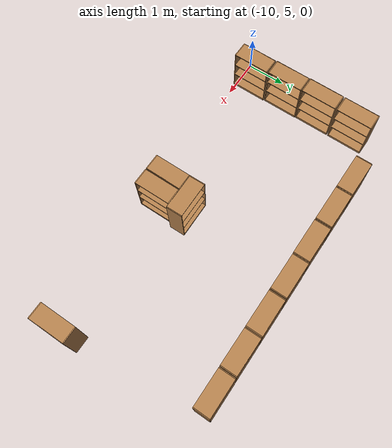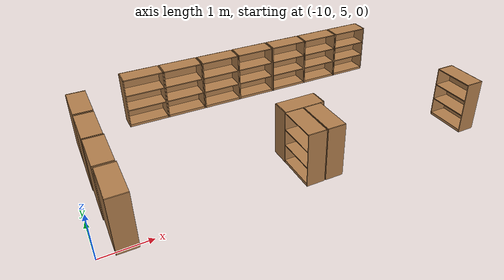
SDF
<sdf version="1.7">
 <world name="default">
  <model name="bookshelf_clone">
   <static>1</static>
   <link name="link">
    <inertial><mass>1</mass></inertial>
    <collision name="back">
     <pose>0 0.005 0.6 0 -0 0</pose>
     <geometry><box><size>0.9 0.01 1.2</size></box></geometry>
    </collision>
    <visual name="visual1">
     <pose>0 0.005 0.6 0 -0 0</pose>
     <geometry><box><size>0.9 0.01 1.2</size></box></geometry>
     <material>
      <script><uri>file://media/materials/scripts/gazebo.material</uri><name>Gazebo/Wood</name></script>
     </material>
    </visual>
    <collision name="left_side">
     <pose>0.45 -0.195 0.6 0 -0 0</pose>
     <geometry><box><size>0.02 0.4 1.2</size></box></geometry>
    </collision>
    <visual name="visual2">
     <pose>0.45 -0.195 0.6 0 -0 0</pose>
     <geometry><box><size>0.02 0.4 1.2</size></box></geometry>
     <material>
      <script><uri>file://media/materials/scripts/gazebo.material</uri><name>Gazebo/Wood</name></script>
     </material>
    </visual>
    <collision name="right_side">
     <pose>-0.45 -0.195 0.6 0 -0 0</pose>
     <geometry><box><size>0.02 0.4 1.2</size></box></geometry>
    </collision>
    <visual name="visual3">
     <pose>-0.45 -0.195 0.6 0 -0 0</pose>
     <geometry><box><size>0.02 0.4 1.2</size></box></geometry>
     <material>
      <script><uri>file://media/materials/scripts/gazebo.material</uri><name>Gazebo/Wood</name></script>
     </material>
    </visual>
    <collision name="bottom">
     <pose>0 -0.195 0.03 0 -0 0</pose>
     <geometry><box><size>0.88 0.4 0.06</size></box></geometry>
    </collision>
    <visual name="visual4">
     <pose>0 -0.195 0.03 0 -0 0</pose>
     <geometry><box><size>0.88 0.4 0.06</size></box></geometry>
     <material>
      <script><uri>file://media/materials/scripts/gazebo.material</uri><name>Gazebo/Wood</name></script>
     </material>
    </visual>
    <collision name="top">
     <pose>0 -0.195 1.19 0 -0 0</pose>
     <geometry><box><size>0.88 0.4 0.02</size></box></geometry>
    </collision>
    <visual name="visual5">
     <pose>0 -0.195 1.19 0 -0 0</pose>
     <geometry><box><size>0.88 0.4 0.02</size></box></geometry>
     <material>
      <script><uri>file://media/materials/scripts/gazebo.material</uri><name>Gazebo/Wood</name></script>
     </material>
    </visual>
    <collision name="low_shelf">
     <pose>0 -0.195 0.43 0 -0 0</pose>
     <geometry><box><size>0.88 0.4 0.02</size></box></geometry>
    </collision>
    <visual name="visual6">
     <pose>0 -0.195 0.43 0 -0 0</pose>
     <geometry><box><size>0.88 0.4 0.02</size></box></geometry>
     <material>
      <script><uri>file://media/materials/scripts/gazebo.material</uri><name>Gazebo/Wood</name></script>
     </material>
    </visual>
    <collision name="high_shelf">
     <pose>0 -0.195 0.8 0 -0 0</pose>
     <geometry><box><size>0.88 0.4 0.02</size></box></geometry>
    </collision>
    <visual name="visual7">
     <pose>0 -0.195 0.8 0 -0 0</pose>
     <geometry><box><size>0.88 0.4 0.02</size></box></geometry>
     <material>
      <script><uri>file://media/materials/scripts/gazebo.material</uri><name>Gazebo/Wood</name></script>
     </material>
    </visual>
   </link>
   <pose>-6.18598 9.11437 0 0 -0 0</pose>
  </model>
  <model name="bookshelf_clone_0_clone_0_clone_clone_7">
   <static>1</static>
   <link name="link">
    <inertial><mass>1</mass></inertial>
    <collision name="back">
     <pose>0 0.005 0.6 0 -0 0</pose>
     <geometry><box><size>0.9 0.01 1.2</size></box></geometry>
    </collision>
    <visual name="visual1">
     <pose>0 0.005 0.6 0 -0 0</pose>
     <geometry><box><size>0.9 0.01 1.2</size></box></geometry>
     <material>
      <script><uri>file://media/materials/scripts/gazebo.material</uri><name>Gazebo/Wood</name></script>
     </material>
    </visual>
    <collision name="left_side">
     <pose>0.45 -0.195 0.6 0 -0 0</pose>
     <geometry><box><size>0.02 0.4 1.2</size></box></geometry>
    </collision>
    <visual name="visual2">
     <pose>0.45 -0.195 0.6 0 -0 0</pose>
     <geometry><box><size>0.02 0.4 1.2</size></box></geometry>
     <material>
      <script><uri>file://media/materials/scripts/gazebo.material</uri><name>Gazebo/Wood</name></script>
     </material>
    </visual>
    <collision name="right_side">
     <pose>-0.45 -0.195 0.6 0 -0 0</pose>
     <geometry><box><size>0.02 0.4 1.2</size></box></geometry>
    </collision>
    <visual name="visual3">
     <pose>-0.45 -0.195 0.6 0 -0 0</pose>
     <geometry><box><size>0.02 0.4 1.2</size></box></geometry>
     <material>
      <script><uri>file://media/materials/scripts/gazebo.material</uri><name>Gazebo/Wood</name></script>
     </material>
    </visual>
    <collision name="bottom">
     <pose>0 -0.195 0.03 0 -0 0</pose>
     <geometry><box><size>0.88 0.4 0.06</size></box></geometry>
    </collision>
    <visual name="visual4">
     <pose>0 -0.195 0.03 0 -0 0</pose>
     <geometry><box><size>0.88 0.4 0.06</size></box></geometry>
     <material>
      <script><uri>file://media/materials/scripts/gazebo.material</uri><name>Gazebo/Wood</name></script>
     </material>
    </visual>
    <collision name="top">
     <pose>0 -0.195 1.19 0 -0 0</pose>
     <geometry><box><size>0.88 0.4 0.02</size></box></geometry>
    </collision>
    <visual name="visual5">
     <pose>0 -0.195 1.19 0 -0 0</pose>
     <geometry><box><size>0.88 0.4 0.02</size></box></geometry>
     <material>
      <script><uri>file://media/materials/scripts/gazebo.material</uri><name>Gazebo/Wood</name></script>
     </material>
    </visual>
    <collision name="low_shelf">
     <pose>0 -0.195 0.43 0 -0 0</pose>
     <geometry><box><size>0.88 0.4 0.02</size></box></geometry>
    </collision>
    <visual name="visual6">
     <pose>0 -0.195 0.43 0 -0 0</pose>
     <geometry><box><size>0.88 0.4 0.02</size></box></geometry>
     <material>
      <script><uri>file://media/materials/scripts/gazebo.material</uri><name>Gazebo/Wood</name></script>
     </material>
    </visual>
    <collision name="high_shelf">
     <pose>0 -0.195 0.8 0 -0 0</pose>
     <geometry><box><size>0.88 0.4 0.02</size></box></geometry>
    </collision>
    <visual name="visual7">
     <pose>0 -0.195 0.8 0 -0 0</pose>
     <geometry><box><size>0.88 0.4 0.02</size></box></geometry>
     <material>
      <script><uri>file://media/materials/scripts/gazebo.material</uri><name>Gazebo/Wood</name></script>
     </material>
    </visual>
   </link>
   <pose>-9.67479 5.39487 0 0 -0 1.56663</pose>
  </model>
  <model name="bookshelf_clone_0_clone_0_clone_clone_8">
   <static>1</static>
   <link name="link">
    <inertial><mass>1</mass></inertial>
    <collision name="back">
     <pose>0 0.005 0.6 0 -0 0</pose>
     <geometry><box><size>0.9 0.01 1.2</size></box></geometry>
    </collision>
    <visual name="visual1">
     <pose>0 0.005 0.6 0 -0 0</pose>
     <geometry><box><size>0.9 0.01 1.2</size></box></geometry>
     <material>
      <script><uri>file://media/materials/scripts/gazebo.material</uri><name>Gazebo/Wood</name></script>
     </material>
    </visual>
    <collision name="left_side">
     <pose>0.45 -0.195 0.6 0 -0 0</pose>
     <geometry><box><size>0.02 0.4 1.2</size></box></geometry>
    </collision>
    <visual name="visual2">
     <pose>0.45 -0.195 0.6 0 -0 0</pose>
     <geometry><box><size>0.02 0.4 1.2</size></box></geometry>
     <material>
      <script><uri>file://media/materials/scripts/gazebo.material</uri><name>Gazebo/Wood</name></script>
     </material>
    </visual>
    <collision name="right_side">
     <pose>-0.45 -0.195 0.6 0 -0 0</pose>
     <geometry><box><size>0.02 0.4 1.2</size></box></geometry>
    </collision>
    <visual name="visual3">
     <pose>-0.45 -0.195 0.6 0 -0 0</pose>
     <geometry><box><size>0.02 0.4 1.2</size></box></geometry>
     <material>
      <script><uri>file://media/materials/scripts/gazebo.material</uri><name>Gazebo/Wood</name></script>
     </material>
    </visual>
    <collision name="bottom">
     <pose>0 -0.195 0.03 0 -0 0</pose>
     <geometry><box><size>0.88 0.4 0.06</size></box></geometry>
    </collision>
    <visual name="visual4">
     <pose>0 -0.195 0.03 0 -0 0</pose>
     <geometry><box><size>0.88 0.4 0.06</size></box></geometry>
     <material>
      <script><uri>file://media/materials/scripts/gazebo.material</uri><name>Gazebo/Wood</name></script>
     </material>
    </visual>
    <collision name="top">
     <pose>0 -0.195 1.19 0 -0 0</pose>
     <geometry><box><size>0.88 0.4 0.02</size></box></geometry>
    </collision>
    <visual name="visual5">
     <pose>0 -0.195 1.19 0 -0 0</pose>
     <geometry><box><size>0.88 0.4 0.02</size></box></geometry>
     <material>
      <script><uri>file://media/materials/scripts/gazebo.material</uri><name>Gazebo/Wood</name></script>
     </material>
    </visual>
    <collision name="low_shelf">
     <pose>0 -0.195 0.43 0 -0 0</pose>
     <geometry><box><size>0.88 0.4 0.02</size></box></geometry>
    </collision>
    <visual name="visual6">
     <pose>0 -0.195 0.43 0 -0 0</pose>
     <geometry><box><size>0.88 0.4 0.02</size></box></geometry>
     <material>
      <script><uri>file://media/materials/scripts/gazebo.material</uri><name>Gazebo/Wood</name></script>
     </material>
    </visual>
    <collision name="high_shelf">
     <pose>0 -0.195 0.8 0 -0 0</pose>
     <geometry><box><size>0.88 0.4 0.02</size></box></geometry>
    </collision>
    <visual name="visual7">
     <pose>0 -0.195 0.8 0 -0 0</pose>
     <geometry><box><size>0.88 0.4 0.02</size></box></geometry>
     <material>
      <script><uri>file://media/materials/scripts/gazebo.material</uri><name>Gazebo/Wood</name></script>
     </material>
    </visual>
   </link>
   <pose>-9.68798 6.33774 0 0 -0 1.56663</pose>
  </model>
  <model name="bookshelf_clone_0_clone_0_clone_clone_9">
   <static>1</static>
   <link name="link">
    <inertial><mass>1</mass></inertial>
    <collision name="back">
     <pose>0 0.005 0.6 0 -0 0</pose>
     <geometry><box><size>0.9 0.01 1.2</size></box></geometry>
    </collision>
    <visual name="visual1">
     <pose>0 0.005 0.6 0 -0 0</pose>
     <geometry><box><size>0.9 0.01 1.2</size></box></geometry>
     <material>
      <script><uri>file://media/materials/scripts/gazebo.material</uri><name>Gazebo/Wood</name></script>
     </material>
    </visual>
    <collision name="left_side">
     <pose>0.45 -0.195 0.6 0 -0 0</pose>
     <geometry><box><size>0.02 0.4 1.2</size></box></geometry>
    </collision>
    <visual name="visual2">
     <pose>0.45 -0.195 0.6 0 -0 0</pose>
     <geometry><box><size>0.02 0.4 1.2</size></box></geometry>
     <material>
      <script><uri>file://media/materials/scripts/gazebo.material</uri><name>Gazebo/Wood</name></script>
     </material>
    </visual>
    <collision name="right_side">
     <pose>-0.45 -0.195 0.6 0 -0 0</pose>
     <geometry><box><size>0.02 0.4 1.2</size></box></geometry>
    </collision>
    <visual name="visual3">
     <pose>-0.45 -0.195 0.6 0 -0 0</pose>
     <geometry><box><size>0.02 0.4 1.2</size></box></geometry>
     <material>
      <script><uri>file://media/materials/scripts/gazebo.material</uri><name>Gazebo/Wood</name></script>
     </material>
    </visual>
    <collision name="bottom">
     <pose>0 -0.195 0.03 0 -0 0</pose>
     <geometry><box><size>0.88 0.4 0.06</size></box></geometry>
    </collision>
    <visual name="visual4">
     <pose>0 -0.195 0.03 0 -0 0</pose>
     <geometry><box><size>0.88 0.4 0.06</size></box></geometry>
     <material>
      <script><uri>file://media/materials/scripts/gazebo.material</uri><name>Gazebo/Wood</name></script>
     </material>
    </visual>
    <collision name="top">
     <pose>0 -0.195 1.19 0 -0 0</pose>
     <geometry><box><size>0.88 0.4 0.02</size></box></geometry>
    </collision>
    <visual name="visual5">
     <pose>0 -0.195 1.19 0 -0 0</pose>
     <geometry><box><size>0.88 0.4 0.02</size></box></geometry>
     <material>
      <script><uri>file://media/materials/scripts/gazebo.material</uri><name>Gazebo/Wood</name></script>
     </material>
    </visual>
    <collision name="low_shelf">
     <pose>0 -0.195 0.43 0 -0 0</pose>
     <geometry><box><size>0.88 0.4 0.02</size></box></geometry>
    </collision>
    <visual name="visual6">
     <pose>0 -0.195 0.43 0 -0 0</pose>
     <geometry><box><size>0.88 0.4 0.02</size></box></geometry>
     <material>
      <script><uri>file://media/materials/scripts/gazebo.material</uri><name>Gazebo/Wood</name></script>
     </material>
    </visual>
    <collision name="high_shelf">
     <pose>0 -0.195 0.8 0 -0 0</pose>
     <geometry><box><size>0.88 0.4 0.02</size></box></geometry>
    </collision>
    <visual name="visual7">
     <pose>0 -0.195 0.8 0 -0 0</pose>
     <geometry><box><size>0.88 0.4 0.02</size></box></geometry>
     <material>
      <script><uri>file://media/materials/scripts/gazebo.material</uri><name>Gazebo/Wood</name></script>
     </material>
    </visual>
   </link>
   <pose>-9.69795 7.26934 0 0 -0 1.56663</pose>
  </model>
  <model name="bookshelf_clone_0_clone_0_clone_clone_10">
   <static>1</static>
   <link name="link">
    <inertial><mass>1</mass></inertial>
    <collision name="back">
     <pose>0 0.005 0.6 0 -0 0</pose>
     <geometry><box><size>0.9 0.01 1.2</size></box></geometry>
    </collision>
    <visual name="visual1">
     <pose>0 0.005 0.6 0 -0 0</pose>
     <geometry><box><size>0.9 0.01 1.2</size></box></geometry>
     <material>
      <script><uri>file://media/materials/scripts/gazebo.material</uri><name>Gazebo/Wood</name></script>
     </material>
    </visual>
    <collision name="left_side">
     <pose>0.45 -0.195 0.6 0 -0 0</pose>
     <geometry><box><size>0.02 0.4 1.2</size></box></geometry>
    </collision>
    <visual name="visual2">
     <pose>0.45 -0.195 0.6 0 -0 0</pose>
     <geometry><box><size>0.02 0.4 1.2</size></box></geometry>
     <material>
      <script><uri>file://media/materials/scripts/gazebo.material</uri><name>Gazebo/Wood</name></script>
     </material>
    </visual>
    <collision name="right_side">
     <pose>-0.45 -0.195 0.6 0 -0 0</pose>
     <geometry><box><size>0.02 0.4 1.2</size></box></geometry>
    </collision>
    <visual name="visual3">
     <pose>-0.45 -0.195 0.6 0 -0 0</pose>
     <geometry><box><size>0.02 0.4 1.2</size></box></geometry>
     <material>
      <script><uri>file://media/materials/scripts/gazebo.material</uri><name>Gazebo/Wood</name></script>
     </material>
    </visual>
    <collision name="bottom">
     <pose>0 -0.195 0.03 0 -0 0</pose>
     <geometry><box><size>0.88 0.4 0.06</size></box></geometry>
    </collision>
    <visual name="visual4">
     <pose>0 -0.195 0.03 0 -0 0</pose>
     <geometry><box><size>0.88 0.4 0.06</size></box></geometry>
     <material>
      <script><uri>file://media/materials/scripts/gazebo.material</uri><name>Gazebo/Wood</name></script>
     </material>
    </visual>
    <collision name="top">
     <pose>0 -0.195 1.19 0 -0 0</pose>
     <geometry><box><size>0.88 0.4 0.02</size></box></geometry>
    </collision>
    <visual name="visual5">
     <pose>0 -0.195 1.19 0 -0 0</pose>
     <geometry><box><size>0.88 0.4 0.02</size></box></geometry>
     <material>
      <script><uri>file://media/materials/scripts/gazebo.material</uri><name>Gazebo/Wood</name></script>
     </material>
    </visual>
    <collision name="low_shelf">
     <pose>0 -0.195 0.43 0 -0 0</pose>
     <geometry><box><size>0.88 0.4 0.02</size></box></geometry>
    </collision>
    <visual name="visual6">
     <pose>0 -0.195 0.43 0 -0 0</pose>
     <geometry><box><size>0.88 0.4 0.02</size></box></geometry>
     <material>
      <script><uri>file://media/materials/scripts/gazebo.material</uri><name>Gazebo/Wood</name></script>
     </material>
    </visual>
    <collision name="high_shelf">
     <pose>0 -0.195 0.8 0 -0 0</pose>
     <geometry><box><size>0.88 0.4 0.02</size></box></geometry>
    </collision>
    <visual name="visual7">
     <pose>0 -0.195 0.8 0 -0 0</pose>
     <geometry><box><size>0.88 0.4 0.02</size></box></geometry>
     <material>
      <script><uri>file://media/materials/scripts/gazebo.material</uri><name>Gazebo/Wood</name></script>
     </material>
    </visual>
   </link>
   <pose>-9.69384 8.21762 0 0 -0 1.56663</pose>
  </model>
  <model name="bookshelf_clone_clone">
   <static>1</static>
   <link name="link">
    <inertial><mass>1</mass></inertial>
    <collision name="back">
     <pose>0 0.005 0.6 0 -0 0</pose>
     <geometry><box><size>0.9 0.01 1.2</size></box></geometry>
    </collision>
    <visual name="visual1">
     <pose>0 0.005 0.6 0 -0 0</pose>
     <geometry><box><size>0.9 0.01 1.2</size></box></geometry>
     <material>
      <script><uri>file://media/materials/scripts/gazebo.material</uri><name>Gazebo/Wood</name></script>
     </material>
    </visual>
    <collision name="left_side">
     <pose>0.45 -0.195 0.6 0 -0 0</pose>
     <geometry><box><size>0.02 0.4 1.2</size></box></geometry>
    </collision>
    <visual name="visual2">
     <pose>0.45 -0.195 0.6 0 -0 0</pose>
     <geometry><box><size>0.02 0.4 1.2</size></box></geometry>
     <material>
      <script><uri>file://media/materials/scripts/gazebo.material</uri><name>Gazebo/Wood</name></script>
     </material>
    </visual>
    <collision name="right_side">
     <pose>-0.45 -0.195 0.6 0 -0 0</pose>
     <geometry><box><size>0.02 0.4 1.2</size></box></geometry>
    </collision>
    <visual name="visual3">
     <pose>-0.45 -0.195 0.6 0 -0 0</pose>
     <geometry><box><size>0.02 0.4 1.2</size></box></geometry>
     <material>
      <script><uri>file://media/materials/scripts/gazebo.material</uri><name>Gazebo/Wood</name></script>
     </material>
    </visual>
    <collision name="bottom">
     <pose>0 -0.195 0.03 0 -0 0</pose>
     <geometry><box><size>0.88 0.4 0.06</size></box></geometry>
    </collision>
    <visual name="visual4">
     <pose>0 -0.195 0.03 0 -0 0</pose>
     <geometry><box><size>0.88 0.4 0.06</size></box></geometry>
     <material>
      <script><uri>file://media/materials/scripts/gazebo.material</uri><name>Gazebo/Wood</name></script>
     </material>
    </visual>
    <collision name="top">
     <pose>0 -0.195 1.19 0 -0 0</pose>
     <geometry><box><size>0.88 0.4 0.02</size></box></geometry>
    </collision>
    <visual name="visual5">
     <pose>0 -0.195 1.19 0 -0 0</pose>
     <geometry><box><size>0.88 0.4 0.02</size></box></geometry>
     <material>
      <script><uri>file://media/materials/scripts/gazebo.material</uri><name>Gazebo/Wood</name></script>
     </material>
    </visual>
    <collision name="low_shelf">
     <pose>0 -0.195 0.43 0 -0 0</pose>
     <geometry><box><size>0.88 0.4 0.02</size></box></geometry>
    </collision>
    <visual name="visual6">
     <pose>0 -0.195 0.43 0 -0 0</pose>
     <geometry><box><size>0.88 0.4 0.02</size></box></geometry>
     <material>
      <script><uri>file://media/materials/scripts/gazebo.material</uri><name>Gazebo/Wood</name></script>
     </material>
    </visual>
    <collision name="high_shelf">
     <pose>0 -0.195 0.8 0 -0 0</pose>
     <geometry><box><size>0.88 0.4 0.02</size></box></geometry>
    </collision>
    <visual name="visual7">
     <pose>0 -0.195 0.8 0 -0 0</pose>
     <geometry><box><size>0.88 0.4 0.02</size></box></geometry>
     <material>
      <script><uri>file://media/materials/scripts/gazebo.material</uri><name>Gazebo/Wood</name></script>
     </material>
    </visual>
   </link>
   <pose>-8.0406 9.11667 0 0 -0 0</pose>
  </model>
  <model name="bookshelf_clone_clone_0">
   <static>1</static>
   <link name="link">
    <inertial><mass>1</mass></inertial>
    <collision name="back">
     <pose>0 0.005 0.6 0 -0 0</pose>
     <geometry><box><size>0.9 0.01 1.2</size></box></geometry>
    </collision>
    <visual name="visual1">
     <pose>0 0.005 0.6 0 -0 0</pose>
     <geometry><box><size>0.9 0.01 1.2</size></box></geometry>
     <material>
      <script><uri>file://media/materials/scripts/gazebo.material</uri><name>Gazebo/Wood</name></script>
     </material>
    </visual>
    <collision name="left_side">
     <pose>0.45 -0.195 0.6 0 -0 0</pose>
     <geometry><box><size>0.02 0.4 1.2</size></box></geometry>
    </collision>
    <visual name="visual2">
     <pose>0.45 -0.195 0.6 0 -0 0</pose>
     <geometry><box><size>0.02 0.4 1.2</size></box></geometry>
     <material>
      <script><uri>file://media/materials/scripts/gazebo.material</uri><name>Gazebo/Wood</name></script>
     </material>
    </visual>
    <collision name="right_side">
     <pose>-0.45 -0.195 0.6 0 -0 0</pose>
     <geometry><box><size>0.02 0.4 1.2</size></box></geometry>
    </collision>
    <visual name="visual3">
     <pose>-0.45 -0.195 0.6 0 -0 0</pose>
     <geometry><box><size>0.02 0.4 1.2</size></box></geometry>
     <material>
      <script><uri>file://media/materials/scripts/gazebo.material</uri><name>Gazebo/Wood</name></script>
     </material>
    </visual>
    <collision name="bottom">
     <pose>0 -0.195 0.03 0 -0 0</pose>
     <geometry><box><size>0.88 0.4 0.06</size></box></geometry>
    </collision>
    <visual name="visual4">
     <pose>0 -0.195 0.03 0 -0 0</pose>
     <geometry><box><size>0.88 0.4 0.06</size></box></geometry>
     <material>
      <script><uri>file://media/materials/scripts/gazebo.material</uri><name>Gazebo/Wood</name></script>
     </material>
    </visual>
    <collision name="top">
     <pose>0 -0.195 1.19 0 -0 0</pose>
     <geometry><box><size>0.88 0.4 0.02</size></box></geometry>
    </collision>
    <visual name="visual5">
     <pose>0 -0.195 1.19 0 -0 0</pose>
     <geometry><box><size>0.88 0.4 0.02</size></box></geometry>
     <material>
      <script><uri>file://media/materials/scripts/gazebo.material</uri><name>Gazebo/Wood</name></script>
     </material>
    </visual>
    <collision name="low_shelf">
     <pose>0 -0.195 0.43 0 -0 0</pose>
     <geometry><box><size>0.88 0.4 0.02</size></box></geometry>
    </collision>
    <visual name="visual6">
     <pose>0 -0.195 0.43 0 -0 0</pose>
     <geometry><box><size>0.88 0.4 0.02</size></box></geometry>
     <material>
      <script><uri>file://media/materials/scripts/gazebo.material</uri><name>Gazebo/Wood</name></script>
     </material>
    </visual>
    <collision name="high_shelf">
     <pose>0 -0.195 0.8 0 -0 0</pose>
     <geometry><box><size>0.88 0.4 0.02</size></box></geometry>
    </collision>
    <visual name="visual7">
     <pose>0 -0.195 0.8 0 -0 0</pose>
     <geometry><box><size>0.88 0.4 0.02</size></box></geometry>
     <material>
      <script><uri>file://media/materials/scripts/gazebo.material</uri><name>Gazebo/Wood</name></script>
     </material>
    </visual>
   </link>
   <pose>-7.11816 9.11591 0 0 -0 0</pose>
  </model>
  <model name="bookshelf_clone_clone_1">
   <static>1</static>
   <link name="link">
    <inertial><mass>1</mass></inertial>
    <collision name="back">
     <pose>0 0.005 0.6 0 -0 0</pose>
     <geometry><box><size>0.9 0.01 1.2</size></box></geometry>
    </collision>
    <visual name="visual1">
     <pose>0 0.005 0.6 0 -0 0</pose>
     <geometry><box><size>0.9 0.01 1.2</size></box></geometry>
     <material>
      <script><uri>file://media/materials/scripts/gazebo.material</uri><name>Gazebo/Wood</name></script>
     </material>
    </visual>
    <collision name="left_side">
     <pose>0.45 -0.195 0.6 0 -0 0</pose>
     <geometry><box><size>0.02 0.4 1.2</size></box></geometry>
    </collision>
    <visual name="visual2">
     <pose>0.45 -0.195 0.6 0 -0 0</pose>
     <geometry><box><size>0.02 0.4 1.2</size></box></geometry>
     <material>
      <script><uri>file://media/materials/scripts/gazebo.material</uri><name>Gazebo/Wood</name></script>
     </material>
    </visual>
    <collision name="right_side">
     <pose>-0.45 -0.195 0.6 0 -0 0</pose>
     <geometry><box><size>0.02 0.4 1.2</size></box></geometry>
    </collision>
    <visual name="visual3">
     <pose>-0.45 -0.195 0.6 0 -0 0</pose>
     <geometry><box><size>0.02 0.4 1.2</size></box></geometry>
     <material>
      <script><uri>file://media/materials/scripts/gazebo.material</uri><name>Gazebo/Wood</name></script>
     </material>
    </visual>
    <collision name="bottom">
     <pose>0 -0.195 0.03 0 -0 0</pose>
     <geometry><box><size>0.88 0.4 0.06</size></box></geometry>
    </collision>
    <visual name="visual4">
     <pose>0 -0.195 0.03 0 -0 0</pose>
     <geometry><box><size>0.88 0.4 0.06</size></box></geometry>
     <material>
      <script><uri>file://media/materials/scripts/gazebo.material</uri><name>Gazebo/Wood</name></script>
     </material>
    </visual>
    <collision name="top">
     <pose>0 -0.195 1.19 0 -0 0</pose>
     <geometry><box><size>0.88 0.4 0.02</size></box></geometry>
    </collision>
    <visual name="visual5">
     <pose>0 -0.195 1.19 0 -0 0</pose>
     <geometry><box><size>0.88 0.4 0.02</size></box></geometry>
     <material>
      <script><uri>file://media/materials/scripts/gazebo.material</uri><name>Gazebo/Wood</name></script>
     </material>
    </visual>
    <collision name="low_shelf">
     <pose>0 -0.195 0.43 0 -0 0</pose>
     <geometry><box><size>0.88 0.4 0.02</size></box></geometry>
    </collision>
    <visual name="visual6">
     <pose>0 -0.195 0.43 0 -0 0</pose>
     <geometry><box><size>0.88 0.4 0.02</size></box></geometry>
     <material>
      <script><uri>file://media/materials/scripts/gazebo.material</uri><name>Gazebo/Wood</name></script>
     </material>
    </visual>
    <collision name="high_shelf">
     <pose>0 -0.195 0.8 0 -0 0</pose>
     <geometry><box><size>0.88 0.4 0.02</size></box></geometry>
    </collision>
    <visual name="visual7">
     <pose>0 -0.195 0.8 0 -0 0</pose>
     <geometry><box><size>0.88 0.4 0.02</size></box></geometry>
     <material>
      <script><uri>file://media/materials/scripts/gazebo.material</uri><name>Gazebo/Wood</name></script>
     </material>
    </visual>
   </link>
   <pose>-5.2584 9.12016 0 0 -0 0</pose>
  </model>
  <model name="bookshelf_clone_clone_2">
   <static>1</static>
   <link name="link">
    <inertial><mass>1</mass></inertial>
    <collision name="back">
     <pose>0 0.005 0.6 0 -0 0</pose>
     <geometry><box><size>0.9 0.01 1.2</size></box></geometry>
    </collision>
    <visual name="visual1">
     <pose>0 0.005 0.6 0 -0 0</pose>
     <geometry><box><size>0.9 0.01 1.2</size></box></geometry>
     <material>
      <script><uri>file://media/materials/scripts/gazebo.material</uri><name>Gazebo/Wood</name></script>
     </material>
    </visual>
    <collision name="left_side">
     <pose>0.45 -0.195 0.6 0 -0 0</pose>
     <geometry><box><size>0.02 0.4 1.2</size></box></geometry>
    </collision>
    <visual name="visual2">
     <pose>0.45 -0.195 0.6 0 -0 0</pose>
     <geometry><box><size>0.02 0.4 1.2</size></box></geometry>
     <material>
      <script><uri>file://media/materials/scripts/gazebo.material</uri><name>Gazebo/Wood</name></script>
     </material>
    </visual>
    <collision name="right_side">
     <pose>-0.45 -0.195 0.6 0 -0 0</pose>
     <geometry><box><size>0.02 0.4 1.2</size></box></geometry>
    </collision>
    <visual name="visual3">
     <pose>-0.45 -0.195 0.6 0 -0 0</pose>
     <geometry><box><size>0.02 0.4 1.2</size></box></geometry>
     <material>
      <script><uri>file://media/materials/scripts/gazebo.material</uri><name>Gazebo/Wood</name></script>
     </material>
    </visual>
    <collision name="bottom">
     <pose>0 -0.195 0.03 0 -0 0</pose>
     <geometry><box><size>0.88 0.4 0.06</size></box></geometry>
    </collision>
    <visual name="visual4">
     <pose>0 -0.195 0.03 0 -0 0</pose>
     <geometry><box><size>0.88 0.4 0.06</size></box></geometry>
     <material>
      <script><uri>file://media/materials/scripts/gazebo.material</uri><name>Gazebo/Wood</name></script>
     </material>
    </visual>
    <collision name="top">
     <pose>0 -0.195 1.19 0 -0 0</pose>
     <geometry><box><size>0.88 0.4 0.02</size></box></geometry>
    </collision>
    <visual name="visual5">
     <pose>0 -0.195 1.19 0 -0 0</pose>
     <geometry><box><size>0.88 0.4 0.02</size></box></geometry>
     <material>
      <script><uri>file://media/materials/scripts/gazebo.material</uri><name>Gazebo/Wood</name></script>
     </material>
    </visual>
    <collision name="low_shelf">
     <pose>0 -0.195 0.43 0 -0 0</pose>
     <geometry><box><size>0.88 0.4 0.02</size></box></geometry>
    </collision>
    <visual name="visual6">
     <pose>0 -0.195 0.43 0 -0 0</pose>
     <geometry><box><size>0.88 0.4 0.02</size></box></geometry>
     <material>
      <script><uri>file://media/materials/scripts/gazebo.material</uri><name>Gazebo/Wood</name></script>
     </material>
    </visual>
    <collision name="high_shelf">
     <pose>0 -0.195 0.8 0 -0 0</pose>
     <geometry><box><size>0.88 0.4 0.02</size></box></geometry>
    </collision>
    <visual name="visual7">
     <pose>0 -0.195 0.8 0 -0 0</pose>
     <geometry><box><size>0.88 0.4 0.02</size></box></geometry>
     <material>
      <script><uri>file://media/materials/scripts/gazebo.material</uri><name>Gazebo/Wood</name></script>
     </material>
    </visual>
   </link>
   <pose>-4.32358 9.12072 0 0 -0 0</pose>
  </model>
  <model name="bookshelf_clone_clone_3">
   <static>1</static>
   <link name="link">
    <inertial><mass>1</mass></inertial>
    <collision name="back">
     <pose>0 0.005 0.6 0 -0 0</pose>
     <geometry><box><size>0.9 0.01 1.2</size></box></geometry>
    </collision>
    <visual name="visual1">
     <pose>0 0.005 0.6 0 -0 0</pose>
     <geometry><box><size>0.9 0.01 1.2</size></box></geometry>
     <material>
      <script><uri>file://media/materials/scripts/gazebo.material</uri><name>Gazebo/Wood</name></script>
     </material>
    </visual>
    <collision name="left_side">
     <pose>0.45 -0.195 0.6 0 -0 0</pose>
     <geometry><box><size>0.02 0.4 1.2</size></box></geometry>
    </collision>
    <visual name="visual2">
     <pose>0.45 -0.195 0.6 0 -0 0</pose>
     <geometry><box><size>0.02 0.4 1.2</size></box></geometry>
     <material>
      <script><uri>file://media/materials/scripts/gazebo.material</uri><name>Gazebo/Wood</name></script>
     </material>
    </visual>
    <collision name="right_side">
     <pose>-0.45 -0.195 0.6 0 -0 0</pose>
     <geometry><box><size>0.02 0.4 1.2</size></box></geometry>
    </collision>
    <visual name="visual3">
     <pose>-0.45 -0.195 0.6 0 -0 0</pose>
     <geometry><box><size>0.02 0.4 1.2</size></box></geometry>
     <material>
      <script><uri>file://media/materials/scripts/gazebo.material</uri><name>Gazebo/Wood</name></script>
     </material>
    </visual>
    <collision name="bottom">
     <pose>0 -0.195 0.03 0 -0 0</pose>
     <geometry><box><size>0.88 0.4 0.06</size></box></geometry>
    </collision>
    <visual name="visual4">
     <pose>0 -0.195 0.03 0 -0 0</pose>
     <geometry><box><size>0.88 0.4 0.06</size></box></geometry>
     <material>
      <script><uri>file://media/materials/scripts/gazebo.material</uri><name>Gazebo/Wood</name></script>
     </material>
    </visual>
    <collision name="top">
     <pose>0 -0.195 1.19 0 -0 0</pose>
     <geometry><box><size>0.88 0.4 0.02</size></box></geometry>
    </collision>
    <visual name="visual5">
     <pose>0 -0.195 1.19 0 -0 0</pose>
     <geometry><box><size>0.88 0.4 0.02</size></box></geometry>
     <material>
      <script><uri>file://media/materials/scripts/gazebo.material</uri><name>Gazebo/Wood</name></script>
     </material>
    </visual>
    <collision name="low_shelf">
     <pose>0 -0.195 0.43 0 -0 0</pose>
     <geometry><box><size>0.88 0.4 0.02</size></box></geometry>
    </collision>
    <visual name="visual6">
     <pose>0 -0.195 0.43 0 -0 0</pose>
     <geometry><box><size>0.88 0.4 0.02</size></box></geometry>
     <material>
      <script><uri>file://media/materials/scripts/gazebo.material</uri><name>Gazebo/Wood</name></script>
     </material>
    </visual>
    <collision name="high_shelf">
     <pose>0 -0.195 0.8 0 -0 0</pose>
     <geometry><box><size>0.88 0.4 0.02</size></box></geometry>
    </collision>
    <visual name="visual7">
     <pose>0 -0.195 0.8 0 -0 0</pose>
     <geometry><box><size>0.88 0.4 0.02</size></box></geometry>
     <material>
      <script><uri>file://media/materials/scripts/gazebo.material</uri><name>Gazebo/Wood</name></script>
     </material>
    </visual>
   </link>
   <pose>-3.39664 9.12165 0 0 -0 0</pose>
  </model>
  <model name="bookshelf_clone_clone_4">
   <static>1</static>
   <link name="link">
    <inertial><mass>1</mass></inertial>
    <collision name="back">
     <pose>0 0.005 0.6 0 -0 0</pose>
     <geometry><box><size>0.9 0.01 1.2</size></box></geometry>
    </collision>
    <visual name="visual1">
     <pose>0 0.005 0.6 0 -0 0</pose>
     <geometry><box><size>0.9 0.01 1.2</size></box></geometry>
     <material>
      <script><uri>file://media/materials/scripts/gazebo.material</uri><name>Gazebo/Wood</name></script>
     </material>
    </visual>
    <collision name="left_side">
     <pose>0.45 -0.195 0.6 0 -0 0</pose>
     <geometry><box><size>0.02 0.4 1.2</size></box></geometry>
    </collision>
    <visual name="visual2">
     <pose>0.45 -0.195 0.6 0 -0 0</pose>
     <geometry><box><size>0.02 0.4 1.2</size></box></geometry>
     <material>
      <script><uri>file://media/materials/scripts/gazebo.material</uri><name>Gazebo/Wood</name></script>
     </material>
    </visual>
    <collision name="right_side">
     <pose>-0.45 -0.195 0.6 0 -0 0</pose>
     <geometry><box><size>0.02 0.4 1.2</size></box></geometry>
    </collision>
    <visual name="visual3">
     <pose>-0.45 -0.195 0.6 0 -0 0</pose>
     <geometry><box><size>0.02 0.4 1.2</size></box></geometry>
     <material>
      <script><uri>file://media/materials/scripts/gazebo.material</uri><name>Gazebo/Wood</name></script>
     </material>
    </visual>
    <collision name="bottom">
     <pose>0 -0.195 0.03 0 -0 0</pose>
     <geometry><box><size>0.88 0.4 0.06</size></box></geometry>
    </collision>
    <visual name="visual4">
     <pose>0 -0.195 0.03 0 -0 0</pose>
     <geometry><box><size>0.88 0.4 0.06</size></box></geometry>
     <material>
      <script><uri>file://media/materials/scripts/gazebo.material</uri><name>Gazebo/Wood</name></script>
     </material>
    </visual>
    <collision name="top">
     <pose>0 -0.195 1.19 0 -0 0</pose>
     <geometry><box><size>0.88 0.4 0.02</size></box></geometry>
    </collision>
    <visual name="visual5">
     <pose>0 -0.195 1.19 0 -0 0</pose>
     <geometry><box><size>0.88 0.4 0.02</size></box></geometry>
     <material>
      <script><uri>file://media/materials/scripts/gazebo.material</uri><name>Gazebo/Wood</name></script>
     </material>
    </visual>
    <collision name="low_shelf">
     <pose>0 -0.195 0.43 0 -0 0</pose>
     <geometry><box><size>0.88 0.4 0.02</size></box></geometry>
    </collision>
    <visual name="visual6">
     <pose>0 -0.195 0.43 0 -0 0</pose>
     <geometry><box><size>0.88 0.4 0.02</size></box></geometry>
     <material>
      <script><uri>file://media/materials/scripts/gazebo.material</uri><name>Gazebo/Wood</name></script>
     </material>
    </visual>
    <collision name="high_shelf">
     <pose>0 -0.195 0.8 0 -0 0</pose>
     <geometry><box><size>0.88 0.4 0.02</size></box></geometry>
    </collision>
    <visual name="visual7">
     <pose>0 -0.195 0.8 0 -0 0</pose>
     <geometry><box><size>0.88 0.4 0.02</size></box></geometry>
     <material>
      <script><uri>file://media/materials/scripts/gazebo.material</uri><name>Gazebo/Wood</name></script>
     </material>
    </visual>
   </link>
   <pose>-2.46519 9.12351 0 0 -0 0</pose>
  </model>
  <model name="bookshelf_clone_2_clone_6">
   <static>1</static>
   <link name="link">
    <inertial><mass>1</mass></inertial>
    <collision name="back">
     <pose>0 0.005 0.6 0 -0 0</pose>
     <geometry><box><size>0.9 0.01 1.2</size></box></geometry>
    </collision>
    <visual name="visual1">
     <pose>0 0.005 0.6 0 -0 0</pose>
     <geometry><box><size>0.9 0.01 1.2</size></box></geometry>
     <material>
      <script><uri>file://media/materials/scripts/gazebo.material</uri><name>Gazebo/Wood</name></script>
     </material>
    </visual>
    <collision name="left_side">
     <pose>0.45 -0.195 0.6 0 -0 0</pose>
     <geometry><box><size>0.02 0.4 1.2</size></box></geometry>
    </collision>
    <visual name="visual2">
     <pose>0.45 -0.195 0.6 0 -0 0</pose>
     <geometry><box><size>0.02 0.4 1.2</size></box></geometry>
     <material>
      <script><uri>file://media/materials/scripts/gazebo.material</uri><name>Gazebo/Wood</name></script>
     </material>
    </visual>
    <collision name="right_side">
     <pose>-0.45 -0.195 0.6 0 -0 0</pose>
     <geometry><box><size>0.02 0.4 1.2</size></box></geometry>
    </collision>
    <visual name="visual3">
     <pose>-0.45 -0.195 0.6 0 -0 0</pose>
     <geometry><box><size>0.02 0.4 1.2</size></box></geometry>
     <material>
      <script><uri>file://media/materials/scripts/gazebo.material</uri><name>Gazebo/Wood</name></script>
     </material>
    </visual>
    <collision name="bottom">
     <pose>0 -0.195 0.03 0 -0 0</pose>
     <geometry><box><size>0.88 0.4 0.06</size></box></geometry>
    </collision>
    <visual name="visual4">
     <pose>0 -0.195 0.03 0 -0 0</pose>
     <geometry><box><size>0.88 0.4 0.06</size></box></geometry>
     <material>
      <script><uri>file://media/materials/scripts/gazebo.material</uri><name>Gazebo/Wood</name></script>
     </material>
    </visual>
    <collision name="top">
     <pose>0 -0.195 1.19 0 -0 0</pose>
     <geometry><box><size>0.88 0.4 0.02</size></box></geometry>
    </collision>
    <visual name="visual5">
     <pose>0 -0.195 1.19 0 -0 0</pose>
     <geometry><box><size>0.88 0.4 0.02</size></box></geometry>
     <material>
      <script><uri>file://media/materials/scripts/gazebo.material</uri><name>Gazebo/Wood</name></script>
     </material>
    </visual>
    <collision name="low_shelf">
     <pose>0 -0.195 0.43 0 -0 0</pose>
     <geometry><box><size>0.88 0.4 0.02</size></box></geometry>
    </collision>
    <visual name="visual6">
     <pose>0 -0.195 0.43 0 -0 0</pose>
     <geometry><box><size>0.88 0.4 0.02</size></box></geometry>
     <material>
      <script><uri>file://media/materials/scripts/gazebo.material</uri><name>Gazebo/Wood</name></script>
     </material>
    </visual>
    <collision name="high_shelf">
     <pose>0 -0.195 0.8 0 -0 0</pose>
     <geometry><box><size>0.88 0.4 0.02</size></box></geometry>
    </collision>
    <visual name="visual7">
     <pose>0 -0.195 0.8 0 -0 0</pose>
     <geometry><box><size>0.88 0.4 0.02</size></box></geometry>
     <material>
      <script><uri>file://media/materials/scripts/gazebo.material</uri><name>Gazebo/Wood</name></script>
     </material>
    </visual>
   </link>
   <pose>-5.59321 5.4333 0 0 0 -1.57136</pose>
  </model>
  <model name="bookshelf_clone_2_clone_clone_0_clone_3">
   <static>1</static>
   <link name="link">
    <inertial><mass>1</mass></inertial>
    <collision name="back">
     <pose>0 0.005 0.6 0 -0 0</pose>
     <geometry><box><size>0.9 0.01 1.2</size></box></geometry>
    </collision>
    <visual name="visual1">
     <pose>0 0.005 0.6 0 -0 0</pose>
     <geometry><box><size>0.9 0.01 1.2</size></box></geometry>
     <material>
      <script><uri>file://media/materials/scripts/gazebo.material</uri><name>Gazebo/Wood</name></script>
     </material>
    </visual>
    <collision name="left_side">
     <pose>0.45 -0.195 0.6 0 -0 0</pose>
     <geometry><box><size>0.02 0.4 1.2</size></box></geometry>
    </collision>
    <visual name="visual2">
     <pose>0.45 -0.195 0.6 0 -0 0</pose>
     <geometry><box><size>0.02 0.4 1.2</size></box></geometry>
     <material>
      <script><uri>file://media/materials/scripts/gazebo.material</uri><name>Gazebo/Wood</name></script>
     </material>
    </visual>
    <collision name="right_side">
     <pose>-0.45 -0.195 0.6 0 -0 0</pose>
     <geometry><box><size>0.02 0.4 1.2</size></box></geometry>
    </collision>
    <visual name="visual3">
     <pose>-0.45 -0.195 0.6 0 -0 0</pose>
     <geometry><box><size>0.02 0.4 1.2</size></box></geometry>
     <material>
      <script><uri>file://media/materials/scripts/gazebo.material</uri><name>Gazebo/Wood</name></script>
     </material>
    </visual>
    <collision name="bottom">
     <pose>0 -0.195 0.03 0 -0 0</pose>
     <geometry><box><size>0.88 0.4 0.06</size></box></geometry>
    </collision>
    <visual name="visual4">
     <pose>0 -0.195 0.03 0 -0 0</pose>
     <geometry><box><size>0.88 0.4 0.06</size></box></geometry>
     <material>
      <script><uri>file://media/materials/scripts/gazebo.material</uri><name>Gazebo/Wood</name></script>
     </material>
    </visual>
    <collision name="top">
     <pose>0 -0.195 1.19 0 -0 0</pose>
     <geometry><box><size>0.88 0.4 0.02</size></box></geometry>
    </collision>
    <visual name="visual5">
     <pose>0 -0.195 1.19 0 -0 0</pose>
     <geometry><box><size>0.88 0.4 0.02</size></box></geometry>
     <material>
      <script><uri>file://media/materials/scripts/gazebo.material</uri><name>Gazebo/Wood</name></script>
     </material>
    </visual>
    <collision name="low_shelf">
     <pose>0 -0.195 0.43 0 -0 0</pose>
     <geometry><box><size>0.88 0.4 0.02</size></box></geometry>
    </collision>
    <visual name="visual6">
     <pose>0 -0.195 0.43 0 -0 0</pose>
     <geometry><box><size>0.88 0.4 0.02</size></box></geometry>
     <material>
      <script><uri>file://media/materials/scripts/gazebo.material</uri><name>Gazebo/Wood</name></script>
     </material>
    </visual>
    <collision name="high_shelf">
     <pose>0 -0.195 0.8 0 -0 0</pose>
     <geometry><box><size>0.88 0.4 0.02</size></box></geometry>
    </collision>
    <visual name="visual7">
     <pose>0 -0.195 0.8 0 -0 0</pose>
     <geometry><box><size>0.88 0.4 0.02</size></box></geometry>
     <material>
      <script><uri>file://media/materials/scripts/gazebo.material</uri><name>Gazebo/Wood</name></script>
     </material>
    </visual>
   </link>
   <pose>-5.5578 5.43429 0 0 -0 1.57553</pose>
  </model>
  <model name="bookshelf_clone_1_clone_clone_6">
   <static>1</static>
   <link name="link">
    <inertial><mass>1</mass></inertial>
    <collision name="back">
     <pose>0 0.005 0.6 0 -0 0</pose>
     <geometry><box><size>0.9 0.01 1.2</size></box></geometry>
    </collision>
    <visual name="visual1">
     <pose>0 0.005 0.6 0 -0 0</pose>
     <geometry><box><size>0.9 0.01 1.2</size></box></geometry>
     <material>
      <script><uri>file://media/materials/scripts/gazebo.material</uri><name>Gazebo/Wood</name></script>
     </material>
    </visual>
    <collision name="left_side">
     <pose>0.45 -0.195 0.6 0 -0 0</pose>
     <geometry><box><size>0.02 0.4 1.2</size></box></geometry>
    </collision>
    <visual name="visual2">
     <pose>0.45 -0.195 0.6 0 -0 0</pose>
     <geometry><box><size>0.02 0.4 1.2</size></box></geometry>
     <material>
      <script><uri>file://media/materials/scripts/gazebo.material</uri><name>Gazebo/Wood</name></script>
     </material>
    </visual>
    <collision name="right_side">
     <pose>-0.45 -0.195 0.6 0 -0 0</pose>
     <geometry><box><size>0.02 0.4 1.2</size></box></geometry>
    </collision>
    <visual name="visual3">
     <pose>-0.45 -0.195 0.6 0 -0 0</pose>
     <geometry><box><size>0.02 0.4 1.2</size></box></geometry>
     <material>
      <script><uri>file://media/materials/scripts/gazebo.material</uri><name>Gazebo/Wood</name></script>
     </material>
    </visual>
    <collision name="bottom">
     <pose>0 -0.195 0.03 0 -0 0</pose>
     <geometry><box><size>0.88 0.4 0.06</size></box></geometry>
    </collision>
    <visual name="visual4">
     <pose>0 -0.195 0.03 0 -0 0</pose>
     <geometry><box><size>0.88 0.4 0.06</size></box></geometry>
     <material>
      <script><uri>file://media/materials/scripts/gazebo.material</uri><name>Gazebo/Wood</name></script>
     </material>
    </visual>
    <collision name="top">
     <pose>0 -0.195 1.19 0 -0 0</pose>
     <geometry><box><size>0.88 0.4 0.02</size></box></geometry>
    </collision>
    <visual name="visual5">
     <pose>0 -0.195 1.19 0 -0 0</pose>
     <geometry><box><size>0.88 0.4 0.02</size></box></geometry>
     <material>
      <script><uri>file://media/materials/scripts/gazebo.material</uri><name>Gazebo/Wood</name></script>
     </material>
    </visual>
    <collision name="low_shelf">
     <pose>0 -0.195 0.43 0 -0 0</pose>
     <geometry><box><size>0.88 0.4 0.02</size></box></geometry>
    </collision>
    <visual name="visual6">
     <pose>0 -0.195 0.43 0 -0 0</pose>
     <geometry><box><size>0.88 0.4 0.02</size></box></geometry>
     <material>
      <script><uri>file://media/materials/scripts/gazebo.material</uri><name>Gazebo/Wood</name></script>
     </material>
    </visual>
    <collision name="high_shelf">
     <pose>0 -0.195 0.8 0 -0 0</pose>
     <geometry><box><size>0.88 0.4 0.02</size></box></geometry>
    </collision>
    <visual name="visual7">
     <pose>0 -0.195 0.8 0 -0 0</pose>
     <geometry><box><size>0.88 0.4 0.02</size></box></geometry>
     <material>
      <script><uri>file://media/materials/scripts/gazebo.material</uri><name>Gazebo/Wood</name></script>
     </material>
    </visual>
   </link>
   <pose>-5.53045 5.90087 0 0 0 -3.12822</pose>
  </model>
  <model name="bookshelf_clone_2_clone_14">
   <static>1</static>
   <link name="link">
    <inertial><mass>1</mass></inertial>
    <collision name="back">
     <pose>0 0.005 0.6 0 -0 0</pose>
     <geometry><box><size>0.9 0.01 1.2</size></box></geometry>
    </collision>
    <visual name="visual1">
     <pose>0 0.005 0.6 0 -0 0</pose>
     <geometry><box><size>0.9 0.01 1.2</size></box></geometry>
     <material>
      <script><uri>file://media/materials/scripts/gazebo.material</uri><name>Gazebo/Wood</name></script>
     </material>
    </visual>
    <collision name="left_side">
     <pose>0.45 -0.195 0.6 0 -0 0</pose>
     <geometry><box><size>0.02 0.4 1.2</size></box></geometry>
    </collision>
    <visual name="visual2">
     <pose>0.45 -0.195 0.6 0 -0 0</pose>
     <geometry><box><size>0.02 0.4 1.2</size></box></geometry>
     <material>
      <script><uri>file://media/materials/scripts/gazebo.material</uri><name>Gazebo/Wood</name></script>
     </material>
    </visual>
    <collision name="right_side">
     <pose>-0.45 -0.195 0.6 0 -0 0</pose>
     <geometry><box><size>0.02 0.4 1.2</size></box></geometry>
    </collision>
    <visual name="visual3">
     <pose>-0.45 -0.195 0.6 0 -0 0</pose>
     <geometry><box><size>0.02 0.4 1.2</size></box></geometry>
     <material>
      <script><uri>file://media/materials/scripts/gazebo.material</uri><name>Gazebo/Wood</name></script>
     </material>
    </visual>
    <collision name="bottom">
     <pose>0 -0.195 0.03 0 -0 0</pose>
     <geometry><box><size>0.88 0.4 0.06</size></box></geometry>
    </collision>
    <visual name="visual4">
     <pose>0 -0.195 0.03 0 -0 0</pose>
     <geometry><box><size>0.88 0.4 0.06</size></box></geometry>
     <material>
      <script><uri>file://media/materials/scripts/gazebo.material</uri><name>Gazebo/Wood</name></script>
     </material>
    </visual>
    <collision name="top">
     <pose>0 -0.195 1.19 0 -0 0</pose>
     <geometry><box><size>0.88 0.4 0.02</size></box></geometry>
    </collision>
    <visual name="visual5">
     <pose>0 -0.195 1.19 0 -0 0</pose>
     <geometry><box><size>0.88 0.4 0.02</size></box></geometry>
     <material>
      <script><uri>file://media/materials/scripts/gazebo.material</uri><name>Gazebo/Wood</name></script>
     </material>
    </visual>
    <collision name="low_shelf">
     <pose>0 -0.195 0.43 0 -0 0</pose>
     <geometry><box><size>0.88 0.4 0.02</size></box></geometry>
    </collision>
    <visual name="visual6">
     <pose>0 -0.195 0.43 0 -0 0</pose>
     <geometry><box><size>0.88 0.4 0.02</size></box></geometry>
     <material>
      <script><uri>file://media/materials/scripts/gazebo.material</uri><name>Gazebo/Wood</name></script>
     </material>
    </visual>
    <collision name="high_shelf">
     <pose>0 -0.195 0.8 0 -0 0</pose>
     <geometry><box><size>0.88 0.4 0.02</size></box></geometry>
    </collision>
    <visual name="visual7">
     <pose>0 -0.195 0.8 0 -0 0</pose>
     <geometry><box><size>0.88 0.4 0.02</size></box></geometry>
     <material>
      <script><uri>file://media/materials/scripts/gazebo.material</uri><name>Gazebo/Wood</name></script>
     </material>
    </visual>
   </link>
   <pose>-1.56327 5.46785 0 0 0 -1.57136</pose>
  </model>
 </world>
</sdf>
